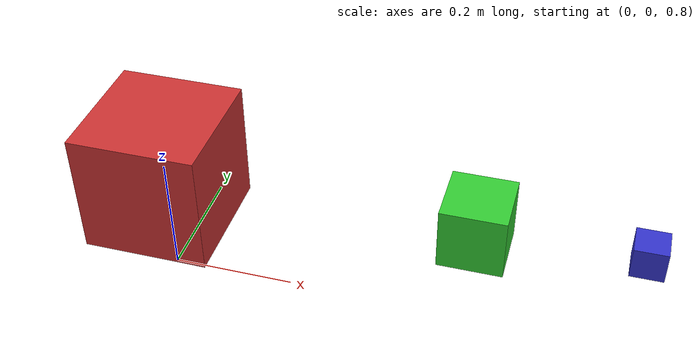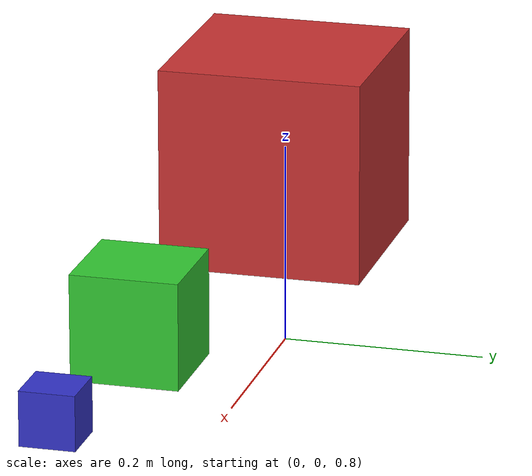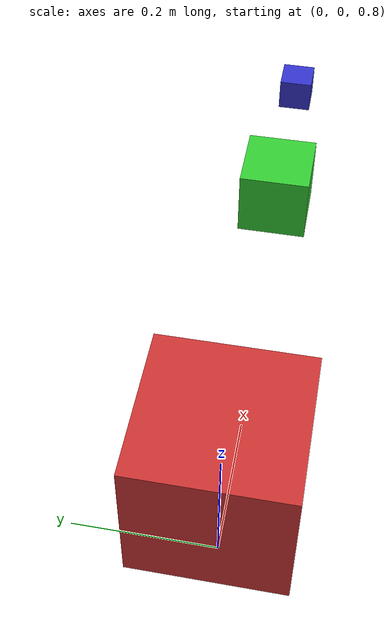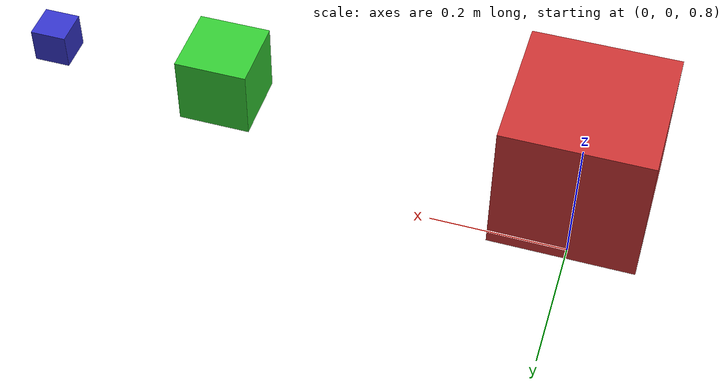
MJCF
<mujoco model="defaults_nested">
<!-- three-level default class tree with geom/joint/position-actuator partials and childclass inheritance -->
  <default>
    <default class="top">
      <geom type="box" size="0.1 0.1 0.1" rgba="0.8 0.2 0.2 1"/>
      <joint type="hinge" damping="0.5"/>
      <position kp="10"/>
      <default class="mid">
        <geom size="0.05 0.05 0.05" rgba="0.2 0.8 0.2 1"/>
        <joint damping="1"/>
        <position kp="20"/>
        <default class="leaf">
          <geom size="0.025 0.025 0.025" rgba="0.2 0.2 0.8 1"/>
          <joint damping="2"/>
          <position kp="40"/>
        </default>
      </default>
    </default>
  </default>

  <worldbody>
    <body name="body_top" pos="0 0 1" childclass="top">
      <geom name="geom_top"/>
      <joint name="joint_top" axis="0 0 1"/>
      <body name="body_mid" pos="0.5 0 0" childclass="mid">
        <geom name="geom_mid"/>
        <joint name="joint_mid" axis="0 1 0"/>
        <body name="body_leaf" pos="0.25 0 0">
          <geom name="geom_leaf" class="leaf"/>
          <joint name="joint_leaf" class="leaf" axis="1 0 0"/>
        </body>
      </body>
    </body>
  </worldbody>

  <actuator>
    <position name="act_top" joint="joint_top" class="top"/>
    <position name="act_mid" joint="joint_mid" class="mid"/>
    <position name="act_leaf" joint="joint_leaf" class="leaf"/>
  </actuator>
</mujoco>
